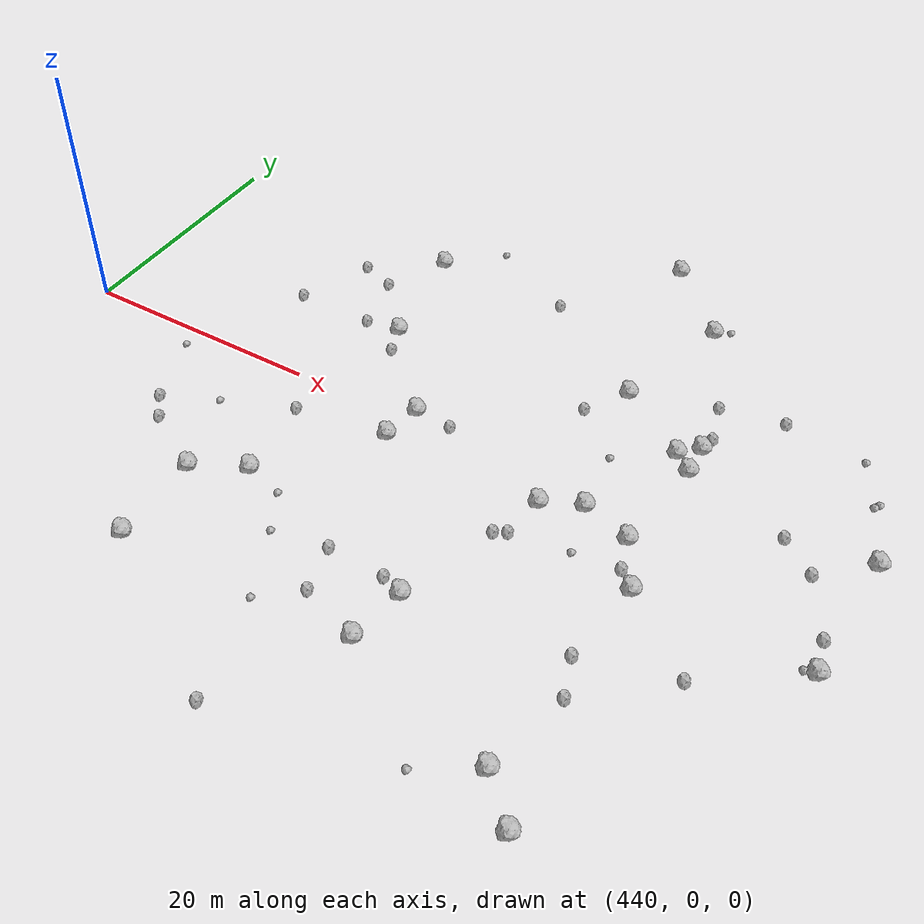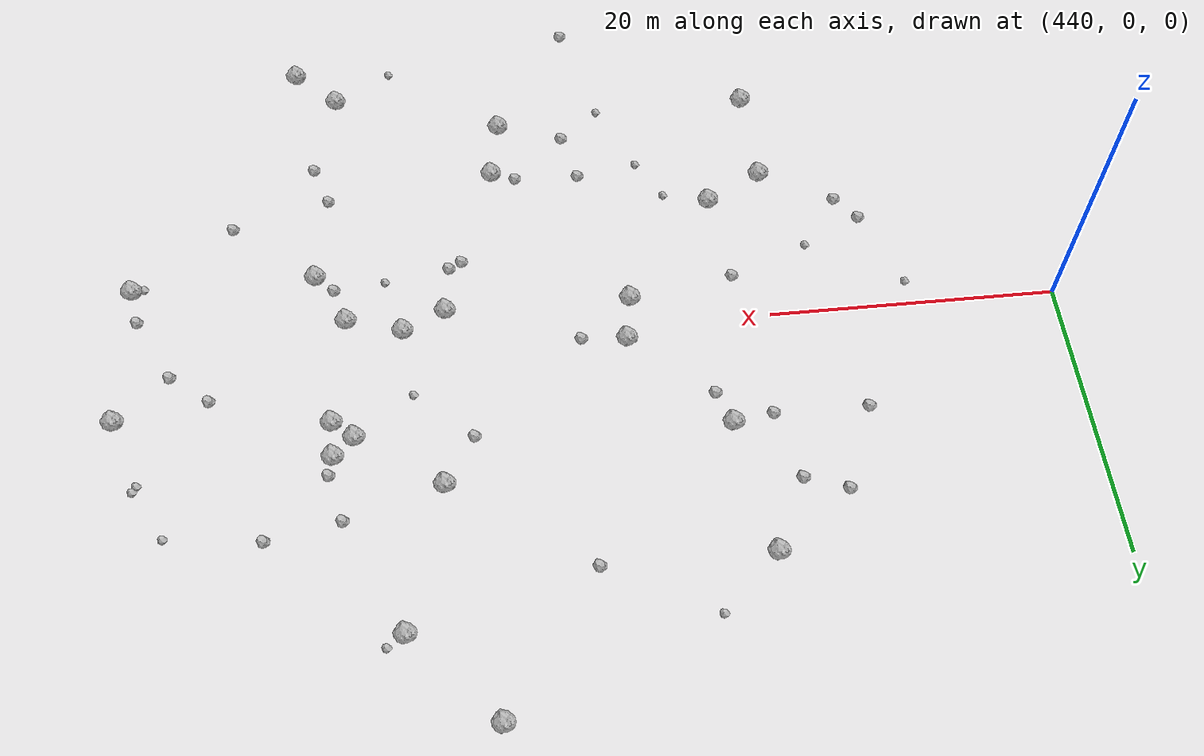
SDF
<sdf version="1.6">
 <world name="default">
  <include><uri>model://sun</uri></include>
  <model name="rock1_12_4">
   <include><uri>model://rock1</uri><pose>477.8918620832882 -18.583945029123683 0.5 0 0 0</pose></include>
  </model>
  <model name="rock1_12_5">
   <include><uri>model://rock1</uri><pose>490.3160150740612 5.914960194061706 0.5 0 0 0</pose></include>
  </model>
  <model name="rock1_12_6">
   <include><uri>model://rock1</uri><pose>463.0658751246218 -10.126057838085437 0.5 0 0 0</pose></include>
  </model>
  <model name="rock1_12_7">
   <include><uri>model://rock1</uri><pose>485.8269607570128 21.186239764765354 0.5 0 0 0</pose></include>
  </model>
  <model name="rock1_12_8">
   <include><uri>model://rock1</uri><pose>504.7770509350478 4.512225279328213 0.5 0 0 0</pose></include>
  </model>
  <model name="rock1_12_9">
   <include><uri>model://rock1</uri><pose>504.25748945851234 -5.945558108878018 0.5 0 0 0</pose></include>
  </model>
  <model name="rock1_12_10">
   <include><uri>model://rock1</uri><pose>462.30563316816983 17.90788944053429 0.5 0 0 0</pose></include>
  </model>
  <model name="rock1_12_11">
   <include><uri>model://rock1</uri><pose>490.0460244105938 -22.234204173732955 0.5 0 0 0</pose></include>
  </model>
  <model name="rock1_12_12">
   <include><uri>model://rock1</uri><pose>489.34866934824606 -2.1012714686262335 0.5 0 0 0</pose></include>
  </model>
  <model name="rock1_12_13">
   <include><uri>model://rock1</uri><pose>478.64487062784303 -14.10580549554734 0.5 0 0 0</pose></include>
  </model>
  <model name="rock1_12_14">
   <include><uri>model://rock1</uri><pose>459.34037633075576 -19.5034766667985 0.5 0 0 0</pose></include>
  </model>
  <model name="rock1_12_15">
   <include><uri>model://rock1</uri><pose>469.6077278305306 -2.134035422203155 0.5 0 0 0</pose></include>
  </model>
  <model name="rock1_12_16">
   <include><uri>model://rock1</uri><pose>463.8115222892067 8.40489999575464 0.5 0 0 0</pose></include>
  </model>
  <model name="rock1_12_17">
   <include><uri>model://rock1</uri><pose>480.1995717385469 27.26378685650375 0.5 0 0 0</pose></include>
  </model>
  <model name="rock1_12_18">
   <include><uri>model://rock1</uri><pose>490.24151283579147 8.488321687086021 0.5 0 0 0</pose></include>
  </model>
  <model name="rock1_12_19">
   <include><uri>model://rock1</uri><pose>459.0624082246541 -12.240869085028166 0.5 0 0 0</pose></include>
  </model>
  <model name="rock1_12_20">
   <include><uri>model://rock1</uri><pose>491.4771243387384 -5.969880665091722 0.5 0 0 0</pose></include>
  </model>
  <model name="rock1_12_21">
   <include><uri>model://rock1</uri><pose>483.0310010936922 11.190959457707798 0.5 0 0 0</pose></include>
  </model>
  <model name="rock1_12_22">
   <include><uri>model://rock1</uri><pose>470.1458283939452 1.1583952787036864 0.5 0 0 0</pose></include>
  </model>
  <model name="rock1_12_23">
   <include><uri>model://rock1</uri><pose>493.0729959562865 -25.109561394195744 0.5 0 0 0</pose></include>
  </model>
  <model name="rock1_12_24">
   <include><uri>model://rock1</uri><pose>488.84579303598065 7.168720637098872 0.5 0 0 0</pose></include>
  </model>
  <model name="rock1_12_25">
   <include><uri>model://rock1</uri><pose>485.4616512122917 -0.9023309811135363 0.5 0 0 0</pose></include>
  </model>
  <model name="rock1_12_26">
   <include><uri>model://rock1</uri><pose>482.48944986129004 -2.3011828878378005 0.5 0 0 0</pose></include>
  </model>
  <model name="rock2_12_0">
   <include><uri>model://rock2</uri><pose>461.04251489938315 7.95291580158591 0.3 0 0 0</pose></include>
  </model>
  <model name="rock2_12_1">
   <include><uri>model://rock2</uri><pose>452.46291095607813 -7.6021981038504585 0.3 0 0 0</pose></include>
  </model>
  <model name="rock2_12_2">
   <include><uri>model://rock2</uri><pose>489.61626725869394 13.18621437455647 0.3 0 0 0</pose></include>
  </model>
  <model name="rock2_12_3">
   <include><uri>model://rock2</uri><pose>501.22406544017315 1.3661100973398597 0.3 0 0 0</pose></include>
  </model>
  <model name="rock2_12_4">
   <include><uri>model://rock2</uri><pose>462.2592761722764 -3.3779307585100717 0.3 0 0 0</pose></include>
  </model>
  <model name="rock2_12_5">
   <include><uri>model://rock2</uri><pose>482.0769999806825 -5.862713409503918 0.3 0 0 0</pose></include>
  </model>
  <model name="rock2_12_6">
   <include><uri>model://rock2</uri><pose>503.72020725148644 -3.3346260613481036 0.3 0 0 0</pose></include>
  </model>
  <model name="rock2_12_7">
   <include><uri>model://rock2</uri><pose>494.60820055940553 14.153165132250642 0.3 0 0 0</pose></include>
  </model>
  <model name="rock2_12_8">
   <include><uri>model://rock2</uri><pose>457.01982561803106 13.938167687644032 0.3 0 0 0</pose></include>
  </model>
  <model name="rock2_12_9">
   <include><uri>model://rock2</uri><pose>472.5115140801123 -27.428442360404496 0.3 0 0 0</pose></include>
  </model>
  <model name="rock2_12_10">
   <include><uri>model://rock2</uri><pose>473.2754840077447 0.8778896271665246 0.3 0 0 0</pose></include>
  </model>
  <model name="rock2_12_11">
   <include><uri>model://rock2</uri><pose>490.5729878935581 -12.673980911468043 0.3 0 0 0</pose></include>
  </model>
  <model name="rock2_12_12">
   <include><uri>model://rock2</uri><pose>490.5282404656358 9.818838644943881 0.3 0 0 0</pose></include>
  </model>
  <model name="rock2_12_13">
   <include><uri>model://rock2</uri><pose>497.3907285269279 -10.758212952081415 0.3 0 0 0</pose></include>
  </model>
  <model name="rock2_12_14">
   <include><uri>model://rock2</uri><pose>491.62778362757695 -15.696386843502248 0.3 0 0 0</pose></include>
  </model>
  <model name="rock2_12_15">
   <include><uri>model://rock2</uri><pose>464.68956130756993 6.019327789161608 0.3 0 0 0</pose></include>
  </model>
  <model name="rock2_12_16">
   <include><uri>model://rock2</uri><pose>476.9265385992584 -13.500326775576163 0.3 0 0 0</pose></include>
  </model>
  <model name="rock2_12_17">
   <include><uri>model://rock2</uri><pose>453.928669291318 -9.410831516516279 0.3 0 0 0</pose></include>
  </model>
  <model name="rock2_12_18">
   <include><uri>model://rock2</uri><pose>480.9388591895721 7.820953310209568 0.3 0 0 0</pose></include>
  </model>
  <model name="rock2_12_19">
   <include><uri>model://rock2</uri><pose>481.17356161231544 -6.364093184130237 0.3 0 0 0</pose></include>
  </model>
  <model name="rock2_12_20">
   <include><uri>model://rock2</uri><pose>459.8775375676066 12.878889860128822 0.3 0 0 0</pose></include>
  </model>
  <model name="rock2_12_21">
   <include><uri>model://rock2</uri><pose>473.2420736530653 -17.019653135500374 0.3 0 0 0</pose></include>
  </model>
  <model name="rock2_12_22">
   <include><uri>model://rock2</uri><pose>498.5020655659746 3.49780056101649 0.3 0 0 0</pose></include>
  </model>
  <model name="rock2_12_23">
   <include><uri>model://rock2</uri><pose>473.5980108662471 17.82152916205264 0.3 0 0 0</pose></include>
  </model>
  <model name="rock2_12_24">
   <include><uri>model://rock2</uri><pose>472.3379797557774 -13.32377431419971 0.3 0 0 0</pose></include>
  </model>
  <model name="rock2_12_25">
   <include><uri>model://rock2</uri><pose>454.6024944671645 8.012946903171162 0.3 0 0 0</pose></include>
  </model>
  <model name="rock2_12_26">
   <include><uri>model://rock2</uri><pose>490.17657943565814 -4.750970518987131 0.3 0 0 0</pose></include>
  </model>
  <model name="rock3_12_0">
   <include><uri>model://rock3</uri><pose>486.5776299968175 -5.171812588955493 0.2 0 0 0</pose></include>
  </model>
  <model name="rock3_12_1">
   <include><uri>model://rock3</uri><pose>502.86935444312587 9.389988034607306 0.2 0 0 0</pose></include>
  </model>
  <model name="rock3_12_2">
   <include><uri>model://rock3</uri><pose>503.1173703061438 9.789340506819123 0.2 0 0 0</pose></include>
  </model>
  <model name="rock3_12_3">
   <include><uri>model://rock3</uri><pose>466.25102707102354 21.641598539354128 0.2 0 0 0</pose></include>
  </model>
  <model name="rock3_12_4">
   <include><uri>model://rock3</uri><pose>484.83953524609916 4.209457105537254 0.2 0 0 0</pose></include>
  </model>
  <model name="rock3_12_5">
   <include><uri>model://rock3</uri><pose>470.36486608588115 -19.431908859800604 0.2 0 0 0</pose></include>
  </model>
  <model name="rock3_12_6">
   <include><uri>model://rock3</uri><pose>450.17032077129625 -1.8197695327990218 0.2 0 0 0</pose></include>
  </model>
  <model name="rock3_12_7">
   <include><uri>model://rock3</uri><pose>467.94318393891973 -14.111596684125233 0.2 0 0 0</pose></include>
  </model>
  <model name="rock3_12_8">
   <include><uri>model://rock3</uri><pose>503.40244425262944 -6.15483277422388 0.2 0 0 0</pose></include>
  </model>
  <model name="rock3_12_9">
   <include><uri>model://rock3</uri><pose>486.9578294666675 21.90240324172401 0.2 0 0 0</pose></include>
  </model>
  <model name="rock3_12_10">
   <include><uri>model://rock3</uri><pose>466.21877544718245 -11.030050945050256 0.2 0 0 0</pose></include>
  </model>
  <model name="rock3_12_11">
   <include><uri>model://rock3</uri><pose>456.63937892056873 -5.607554549115076 0.2 0 0 0</pose></include>
  </model>
  <model name="rock3_12_12">
   <include><uri>model://rock3</uri><pose>485.982554994649 -24.758316376906503 0.2 0 0 0</pose></include>
  </model>
  <model name="rock3_12_13">
   <include><uri>model://rock3</uri><pose>500.9512052941395 13.351387693324625 0.2 0 0 0</pose></include>
  </model>
 </world>
</sdf>
